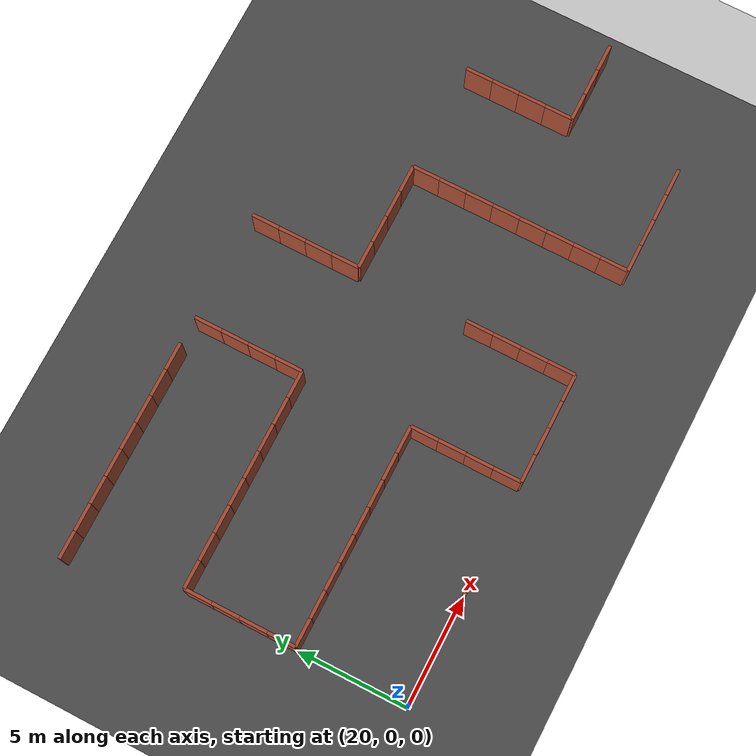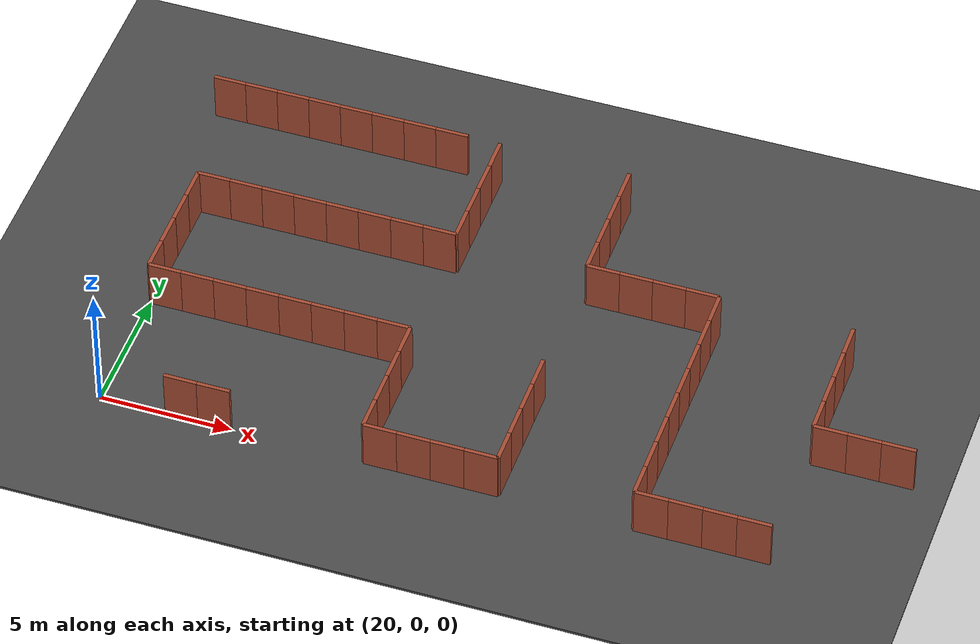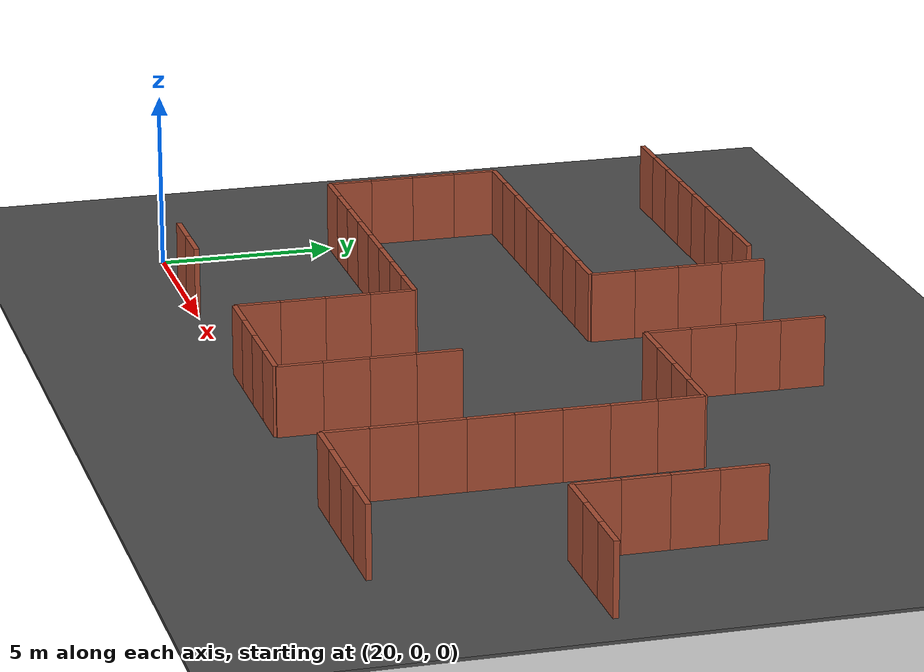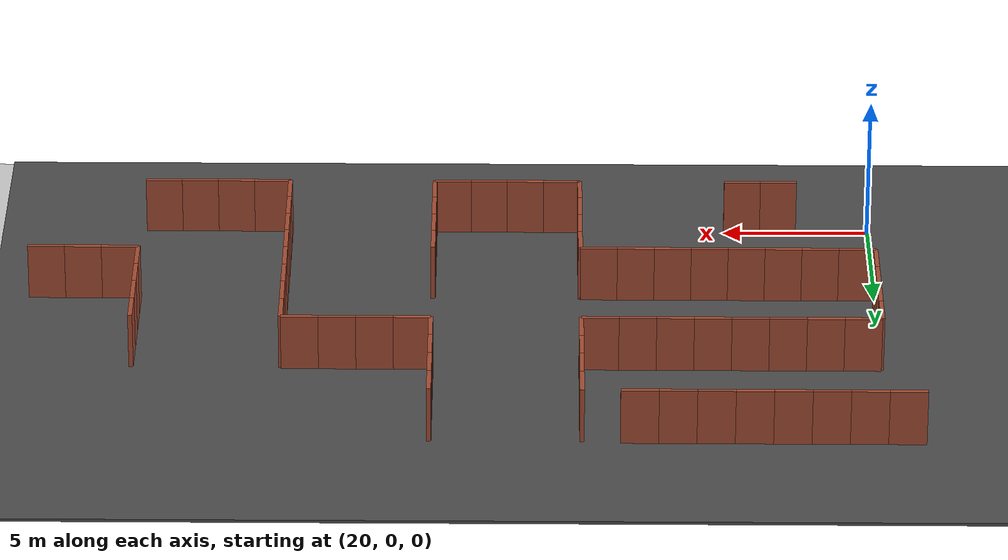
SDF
<sdf version="1.6">
 <world name="default">
  <model name="ground_plane">
   <static>1</static>
   <link name="link">
    <collision name="collision">
     <geometry><plane><normal>0 0 1</normal><size>100 100</size></plane></geometry>
     <surface><friction><ode><mu>100</mu><mu2>50</mu2></ode></friction></surface>
    </collision>
    <visual name="visual">
     <cast_shadows>0</cast_shadows>
     <geometry><plane><normal>0 0 1</normal><size>100 100</size></plane></geometry>
     <material>
      <script><uri>file://media/materials/scripts/gazebo.material</uri><name>Gazebo/Grey</name></script>
     </material>
    </visual>
   </link>
  </model>
  <model name="asphalt_plane">
   <static>1</static>
   <link name="link">
    <collision name="collision"><geometry><box><size>100 100 0.1</size></box></geometry></collision>
    <visual name="visual">
     <cast_shadows>0</cast_shadows>
     <geometry><box><size>100 100 0.1</size></box></geometry>
     <material>
      <script>
       <uri>model://asphalt_plane/materials/scripts</uri>
       <uri>model://asphalt_plane/materials/textures</uri>
       <name>vrc/asphalt</name>
      </script>
     </material>
    </visual>
   </link>
  </model>
  <model name="brick_wall_28_22_vertical1">
   <pose>20.625 5 0 0 -0 0</pose>
   <link name="Wall_0">
    <collision name="Wall_0_Collision">
     <geometry><box><size>1.25 0.15 2</size></box></geometry>
     <pose>0 0 1 0 -0 0</pose>
    </collision>
    <visual name="Wall_0_Visual">
     <pose>0 0 1 0 -0 0</pose>
     <geometry><box><size>1.25 0.15 2</size></box></geometry>
     <material>
      <script><uri>file://media/materials/scripts/gazebo.material</uri><name>Gazebo/Bricks</name></script>
      <ambient>1 1 1 1</ambient>
     </material>
     <meta><layer>0</layer></meta>
    </visual>
   </link>
   <static>1</static>
  </model>
  <model name="brick_wall_28_22_horizontal1">
   <pose>20 5.625 0 0 -0 1.5708</pose>
   <link name="Wall_0">
    <collision name="Wall_0_Collision">
     <geometry><box><size>1.25 0.15 2</size></box></geometry>
     <pose>0 0 1 0 -0 0</pose>
    </collision>
    <visual name="Wall_0_Visual">
     <pose>0 0 1 0 -0 0</pose>
     <geometry><box><size>1.25 0.15 2</size></box></geometry>
     <material>
      <script><uri>file://media/materials/scripts/gazebo.material</uri><name>Gazebo/Bricks</name></script>
      <ambient>1 1 1 1</ambient>
     </material>
     <meta><layer>0</layer></meta>
    </visual>
   </link>
   <static>1</static>
  </model>
  <model name="brick_wall_28_23_horizontal1">
   <pose>20 8.125 0 0 -0 1.5708</pose>
   <link name="Wall_0">
    <collision name="Wall_0_Collision">
     <geometry><box><size>1.25 0.15 2</size></box></geometry>
     <pose>0 0 1 0 -0 0</pose>
    </collision>
    <visual name="Wall_0_Visual">
     <pose>0 0 1 0 -0 0</pose>
     <geometry><box><size>1.25 0.15 2</size></box></geometry>
     <material>
      <script><uri>file://media/materials/scripts/gazebo.material</uri><name>Gazebo/Bricks</name></script>
      <ambient>1 1 1 1</ambient>
     </material>
     <meta><layer>0</layer></meta>
    </visual>
   </link>
   <static>1</static>
  </model>
  <model name="brick_wall_28_23_horizontal2">
   <pose>20 6.875 0 0 -0 1.5708</pose>
   <link name="Wall_0">
    <collision name="Wall_0_Collision">
     <geometry><box><size>1.25 0.15 2</size></box></geometry>
     <pose>0 0 1 0 -0 0</pose>
    </collision>
    <visual name="Wall_0_Visual">
     <pose>0 0 1 0 -0 0</pose>
     <geometry><box><size>1.25 0.15 2</size></box></geometry>
     <material>
      <script><uri>file://media/materials/scripts/gazebo.material</uri><name>Gazebo/Bricks</name></script>
      <ambient>1 1 1 1</ambient>
     </material>
     <meta><layer>0</layer></meta>
    </visual>
   </link>
   <static>1</static>
  </model>
  <model name="brick_wall_28_24_vertical1">
   <pose>20.625 10 0 0 -0 0</pose>
   <link name="Wall_0">
    <collision name="Wall_0_Collision">
     <geometry><box><size>1.25 0.15 2</size></box></geometry>
     <pose>0 0 1 0 -0 0</pose>
    </collision>
    <visual name="Wall_0_Visual">
     <pose>0 0 1 0 -0 0</pose>
     <geometry><box><size>1.25 0.15 2</size></box></geometry>
     <material>
      <script><uri>file://media/materials/scripts/gazebo.material</uri><name>Gazebo/Bricks</name></script>
      <ambient>1 1 1 1</ambient>
     </material>
     <meta><layer>0</layer></meta>
    </visual>
   </link>
   <static>1</static>
  </model>
  <model name="brick_wall_28_24_horizontal2">
   <pose>20 9.375 0 0 -0 1.5708</pose>
   <link name="Wall_0">
    <collision name="Wall_0_Collision">
     <geometry><box><size>1.25 0.15 2</size></box></geometry>
     <pose>0 0 1 0 -0 0</pose>
    </collision>
    <visual name="Wall_0_Visual">
     <pose>0 0 1 0 -0 0</pose>
     <geometry><box><size>1.25 0.15 2</size></box></geometry>
     <material>
      <script><uri>file://media/materials/scripts/gazebo.material</uri><name>Gazebo/Bricks</name></script>
      <ambient>1 1 1 1</ambient>
     </material>
     <meta><layer>0</layer></meta>
    </visual>
   </link>
   <static>1</static>
  </model>
  <model name="brick_wall_28_26_vertical1">
   <pose>20.625 15 0 0 -0 0</pose>
   <link name="Wall_0">
    <collision name="Wall_0_Collision">
     <geometry><box><size>1.25 0.15 2</size></box></geometry>
     <pose>0 0 1 0 -0 0</pose>
    </collision>
    <visual name="Wall_0_Visual">
     <pose>0 0 1 0 -0 0</pose>
     <geometry><box><size>1.25 0.15 2</size></box></geometry>
     <material>
      <script><uri>file://media/materials/scripts/gazebo.material</uri><name>Gazebo/Bricks</name></script>
      <ambient>1 1 1 1</ambient>
     </material>
     <meta><layer>0</layer></meta>
    </visual>
   </link>
   <static>1</static>
  </model>
  <model name="brick_wall_28_26_vertical2">
   <pose>19.375 15 0 0 -0 0</pose>
   <link name="Wall_0">
    <collision name="Wall_0_Collision">
     <geometry><box><size>1.25 0.15 2</size></box></geometry>
     <pose>0 0 1 0 -0 0</pose>
    </collision>
    <visual name="Wall_0_Visual">
     <pose>0 0 1 0 -0 0</pose>
     <geometry><box><size>1.25 0.15 2</size></box></geometry>
     <material>
      <script><uri>file://media/materials/scripts/gazebo.material</uri><name>Gazebo/Bricks</name></script>
      <ambient>1 1 1 1</ambient>
     </material>
     <meta><layer>0</layer></meta>
    </visual>
   </link>
   <static>1</static>
  </model>
  <model name="brick_wall_29_20_vertical1">
   <pose>23.125 0 0 0 -0 0</pose>
   <link name="Wall_0">
    <collision name="Wall_0_Collision">
     <geometry><box><size>1.25 0.15 2</size></box></geometry>
     <pose>0 0 1 0 -0 0</pose>
    </collision>
    <visual name="Wall_0_Visual">
     <pose>0 0 1 0 -0 0</pose>
     <geometry><box><size>1.25 0.15 2</size></box></geometry>
     <material>
      <script><uri>file://media/materials/scripts/gazebo.material</uri><name>Gazebo/Bricks</name></script>
      <ambient>1 1 1 1</ambient>
     </material>
     <meta><layer>0</layer></meta>
    </visual>
   </link>
   <static>1</static>
  </model>
  <model name="brick_wall_29_22_vertical1">
   <pose>23.125 5 0 0 -0 0</pose>
   <link name="Wall_0">
    <collision name="Wall_0_Collision">
     <geometry><box><size>1.25 0.15 2</size></box></geometry>
     <pose>0 0 1 0 -0 0</pose>
    </collision>
    <visual name="Wall_0_Visual">
     <pose>0 0 1 0 -0 0</pose>
     <geometry><box><size>1.25 0.15 2</size></box></geometry>
     <material>
      <script><uri>file://media/materials/scripts/gazebo.material</uri><name>Gazebo/Bricks</name></script>
      <ambient>1 1 1 1</ambient>
     </material>
     <meta><layer>0</layer></meta>
    </visual>
   </link>
   <static>1</static>
  </model>
  <model name="brick_wall_29_22_vertical2">
   <pose>21.875 5 0 0 -0 0</pose>
   <link name="Wall_0">
    <collision name="Wall_0_Collision">
     <geometry><box><size>1.25 0.15 2</size></box></geometry>
     <pose>0 0 1 0 -0 0</pose>
    </collision>
    <visual name="Wall_0_Visual">
     <pose>0 0 1 0 -0 0</pose>
     <geometry><box><size>1.25 0.15 2</size></box></geometry>
     <material>
      <script><uri>file://media/materials/scripts/gazebo.material</uri><name>Gazebo/Bricks</name></script>
      <ambient>1 1 1 1</ambient>
     </material>
     <meta><layer>0</layer></meta>
    </visual>
   </link>
   <static>1</static>
  </model>
  <model name="brick_wall_29_24_vertical1">
   <pose>23.125 10 0 0 -0 0</pose>
   <link name="Wall_0">
    <collision name="Wall_0_Collision">
     <geometry><box><size>1.25 0.15 2</size></box></geometry>
     <pose>0 0 1 0 -0 0</pose>
    </collision>
    <visual name="Wall_0_Visual">
     <pose>0 0 1 0 -0 0</pose>
     <geometry><box><size>1.25 0.15 2</size></box></geometry>
     <material>
      <script><uri>file://media/materials/scripts/gazebo.material</uri><name>Gazebo/Bricks</name></script>
      <ambient>1 1 1 1</ambient>
     </material>
     <meta><layer>0</layer></meta>
    </visual>
   </link>
   <static>1</static>
  </model>
  <model name="brick_wall_29_24_vertical2">
   <pose>21.875 10 0 0 -0 0</pose>
   <link name="Wall_0">
    <collision name="Wall_0_Collision">
     <geometry><box><size>1.25 0.15 2</size></box></geometry>
     <pose>0 0 1 0 -0 0</pose>
    </collision>
    <visual name="Wall_0_Visual">
     <pose>0 0 1 0 -0 0</pose>
     <geometry><box><size>1.25 0.15 2</size></box></geometry>
     <material>
      <script><uri>file://media/materials/scripts/gazebo.material</uri><name>Gazebo/Bricks</name></script>
      <ambient>1 1 1 1</ambient>
     </material>
     <meta><layer>0</layer></meta>
    </visual>
   </link>
   <static>1</static>
  </model>
  <model name="brick_wall_29_26_vertical1">
   <pose>23.125 15 0 0 -0 0</pose>
   <link name="Wall_0">
    <collision name="Wall_0_Collision">
     <geometry><box><size>1.25 0.15 2</size></box></geometry>
     <pose>0 0 1 0 -0 0</pose>
    </collision>
    <visual name="Wall_0_Visual">
     <pose>0 0 1 0 -0 0</pose>
     <geometry><box><size>1.25 0.15 2</size></box></geometry>
     <material>
      <script><uri>file://media/materials/scripts/gazebo.material</uri><name>Gazebo/Bricks</name></script>
      <ambient>1 1 1 1</ambient>
     </material>
     <meta><layer>0</layer></meta>
    </visual>
   </link>
   <static>1</static>
  </model>
  <model name="brick_wall_29_26_vertical2">
   <pose>21.875 15 0 0 -0 0</pose>
   <link name="Wall_0">
    <collision name="Wall_0_Collision">
     <geometry><box><size>1.25 0.15 2</size></box></geometry>
     <pose>0 0 1 0 -0 0</pose>
    </collision>
    <visual name="Wall_0_Visual">
     <pose>0 0 1 0 -0 0</pose>
     <geometry><box><size>1.25 0.15 2</size></box></geometry>
     <material>
      <script><uri>file://media/materials/scripts/gazebo.material</uri><name>Gazebo/Bricks</name></script>
      <ambient>1 1 1 1</ambient>
     </material>
     <meta><layer>0</layer></meta>
    </visual>
   </link>
   <static>1</static>
  </model>
  <model name="brick_wall_30_20_vertical2">
   <pose>24.375 0 0 0 -0 0</pose>
   <link name="Wall_0">
    <collision name="Wall_0_Collision">
     <geometry><box><size>1.25 0.15 2</size></box></geometry>
     <pose>0 0 1 0 -0 0</pose>
    </collision>
    <visual name="Wall_0_Visual">
     <pose>0 0 1 0 -0 0</pose>
     <geometry><box><size>1.25 0.15 2</size></box></geometry>
     <material>
      <script><uri>file://media/materials/scripts/gazebo.material</uri><name>Gazebo/Bricks</name></script>
      <ambient>1 1 1 1</ambient>
     </material>
     <meta><layer>0</layer></meta>
    </visual>
   </link>
   <static>1</static>
  </model>
  <model name="brick_wall_30_22_vertical1">
   <pose>25.625 5 0 0 -0 0</pose>
   <link name="Wall_0">
    <collision name="Wall_0_Collision">
     <geometry><box><size>1.25 0.15 2</size></box></geometry>
     <pose>0 0 1 0 -0 0</pose>
    </collision>
    <visual name="Wall_0_Visual">
     <pose>0 0 1 0 -0 0</pose>
     <geometry><box><size>1.25 0.15 2</size></box></geometry>
     <material>
      <script><uri>file://media/materials/scripts/gazebo.material</uri><name>Gazebo/Bricks</name></script>
      <ambient>1 1 1 1</ambient>
     </material>
     <meta><layer>0</layer></meta>
    </visual>
   </link>
   <static>1</static>
  </model>
  <model name="brick_wall_30_22_vertical2">
   <pose>24.375 5 0 0 -0 0</pose>
   <link name="Wall_0">
    <collision name="Wall_0_Collision">
     <geometry><box><size>1.25 0.15 2</size></box></geometry>
     <pose>0 0 1 0 -0 0</pose>
    </collision>
    <visual name="Wall_0_Visual">
     <pose>0 0 1 0 -0 0</pose>
     <geometry><box><size>1.25 0.15 2</size></box></geometry>
     <material>
      <script><uri>file://media/materials/scripts/gazebo.material</uri><name>Gazebo/Bricks</name></script>
      <ambient>1 1 1 1</ambient>
     </material>
     <meta><layer>0</layer></meta>
    </visual>
   </link>
   <static>1</static>
  </model>
  <model name="brick_wall_30_24_vertical1">
   <pose>25.625 10 0 0 -0 0</pose>
   <link name="Wall_0">
    <collision name="Wall_0_Collision">
     <geometry><box><size>1.25 0.15 2</size></box></geometry>
     <pose>0 0 1 0 -0 0</pose>
    </collision>
    <visual name="Wall_0_Visual">
     <pose>0 0 1 0 -0 0</pose>
     <geometry><box><size>1.25 0.15 2</size></box></geometry>
     <material>
      <script><uri>file://media/materials/scripts/gazebo.material</uri><name>Gazebo/Bricks</name></script>
      <ambient>1 1 1 1</ambient>
     </material>
     <meta><layer>0</layer></meta>
    </visual>
   </link>
   <static>1</static>
  </model>
  <model name="brick_wall_30_24_vertical2">
   <pose>24.375 10 0 0 -0 0</pose>
   <link name="Wall_0">
    <collision name="Wall_0_Collision">
     <geometry><box><size>1.25 0.15 2</size></box></geometry>
     <pose>0 0 1 0 -0 0</pose>
    </collision>
    <visual name="Wall_0_Visual">
     <pose>0 0 1 0 -0 0</pose>
     <geometry><box><size>1.25 0.15 2</size></box></geometry>
     <material>
      <script><uri>file://media/materials/scripts/gazebo.material</uri><name>Gazebo/Bricks</name></script>
      <ambient>1 1 1 1</ambient>
     </material>
     <meta><layer>0</layer></meta>
    </visual>
   </link>
   <static>1</static>
  </model>
  <model name="brick_wall_30_26_vertical1">
   <pose>25.625 15 0 0 -0 0</pose>
   <link name="Wall_0">
    <collision name="Wall_0_Collision">
     <geometry><box><size>1.25 0.15 2</size></box></geometry>
     <pose>0 0 1 0 -0 0</pose>
    </collision>
    <visual name="Wall_0_Visual">
     <pose>0 0 1 0 -0 0</pose>
     <geometry><box><size>1.25 0.15 2</size></box></geometry>
     <material>
      <script><uri>file://media/materials/scripts/gazebo.material</uri><name>Gazebo/Bricks</name></script>
      <ambient>1 1 1 1</ambient>
     </material>
     <meta><layer>0</layer></meta>
    </visual>
   </link>
   <static>1</static>
  </model>
  <model name="brick_wall_30_26_vertical2">
   <pose>24.375 15 0 0 -0 0</pose>
   <link name="Wall_0">
    <collision name="Wall_0_Collision">
     <geometry><box><size>1.25 0.15 2</size></box></geometry>
     <pose>0 0 1 0 -0 0</pose>
    </collision>
    <visual name="Wall_0_Visual">
     <pose>0 0 1 0 -0 0</pose>
     <geometry><box><size>1.25 0.15 2</size></box></geometry>
     <material>
      <script><uri>file://media/materials/scripts/gazebo.material</uri><name>Gazebo/Bricks</name></script>
      <ambient>1 1 1 1</ambient>
     </material>
     <meta><layer>0</layer></meta>
    </visual>
   </link>
   <static>1</static>
  </model>
  <model name="brick_wall_31_22_vertical1">
   <pose>28.125 5 0 0 -0 0</pose>
   <link name="Wall_0">
    <collision name="Wall_0_Collision">
     <geometry><box><size>1.25 0.15 2</size></box></geometry>
     <pose>0 0 1 0 -0 0</pose>
    </collision>
    <visual name="Wall_0_Visual">
     <pose>0 0 1 0 -0 0</pose>
     <geometry><box><size>1.25 0.15 2</size></box></geometry>
     <material>
      <script><uri>file://media/materials/scripts/gazebo.material</uri><name>Gazebo/Bricks</name></script>
      <ambient>1 1 1 1</ambient>
     </material>
     <meta><layer>0</layer></meta>
    </visual>
   </link>
   <static>1</static>
  </model>
  <model name="brick_wall_31_22_vertical2">
   <pose>26.875 5 0 0 -0 0</pose>
   <link name="Wall_0">
    <collision name="Wall_0_Collision">
     <geometry><box><size>1.25 0.15 2</size></box></geometry>
     <pose>0 0 1 0 -0 0</pose>
    </collision>
    <visual name="Wall_0_Visual">
     <pose>0 0 1 0 -0 0</pose>
     <geometry><box><size>1.25 0.15 2</size></box></geometry>
     <material>
      <script><uri>file://media/materials/scripts/gazebo.material</uri><name>Gazebo/Bricks</name></script>
      <ambient>1 1 1 1</ambient>
     </material>
     <meta><layer>0</layer></meta>
    </visual>
   </link>
   <static>1</static>
  </model>
  <model name="brick_wall_31_24_vertical1">
   <pose>28.125 10 0 0 -0 0</pose>
   <link name="Wall_0">
    <collision name="Wall_0_Collision">
     <geometry><box><size>1.25 0.15 2</size></box></geometry>
     <pose>0 0 1 0 -0 0</pose>
    </collision>
    <visual name="Wall_0_Visual">
     <pose>0 0 1 0 -0 0</pose>
     <geometry><box><size>1.25 0.15 2</size></box></geometry>
     <material>
      <script><uri>file://media/materials/scripts/gazebo.material</uri><name>Gazebo/Bricks</name></script>
      <ambient>1 1 1 1</ambient>
     </material>
     <meta><layer>0</layer></meta>
    </visual>
   </link>
   <static>1</static>
  </model>
  <model name="brick_wall_31_24_vertical2">
   <pose>26.875 10 0 0 -0 0</pose>
   <link name="Wall_0">
    <collision name="Wall_0_Collision">
     <geometry><box><size>1.25 0.15 2</size></box></geometry>
     <pose>0 0 1 0 -0 0</pose>
    </collision>
    <visual name="Wall_0_Visual">
     <pose>0 0 1 0 -0 0</pose>
     <geometry><box><size>1.25 0.15 2</size></box></geometry>
     <material>
      <script><uri>file://media/materials/scripts/gazebo.material</uri><name>Gazebo/Bricks</name></script>
      <ambient>1 1 1 1</ambient>
     </material>
     <meta><layer>0</layer></meta>
    </visual>
   </link>
   <static>1</static>
  </model>
  <model name="brick_wall_31_26_vertical1">
   <pose>28.125 15 0 0 -0 0</pose>
   <link name="Wall_0">
    <collision name="Wall_0_Collision">
     <geometry><box><size>1.25 0.15 2</size></box></geometry>
     <pose>0 0 1 0 -0 0</pose>
    </collision>
    <visual name="Wall_0_Visual">
     <pose>0 0 1 0 -0 0</pose>
     <geometry><box><size>1.25 0.15 2</size></box></geometry>
     <material>
      <script><uri>file://media/materials/scripts/gazebo.material</uri><name>Gazebo/Bricks</name></script>
      <ambient>1 1 1 1</ambient>
     </material>
     <meta><layer>0</layer></meta>
    </visual>
   </link>
   <static>1</static>
  </model>
  <model name="brick_wall_31_26_vertical2">
   <pose>26.875 15 0 0 -0 0</pose>
   <link name="Wall_0">
    <collision name="Wall_0_Collision">
     <geometry><box><size>1.25 0.15 2</size></box></geometry>
     <pose>0 0 1 0 -0 0</pose>
    </collision>
    <visual name="Wall_0_Visual">
     <pose>0 0 1 0 -0 0</pose>
     <geometry><box><size>1.25 0.15 2</size></box></geometry>
     <material>
      <script><uri>file://media/materials/scripts/gazebo.material</uri><name>Gazebo/Bricks</name></script>
      <ambient>1 1 1 1</ambient>
     </material>
     <meta><layer>0</layer></meta>
    </visual>
   </link>
   <static>1</static>
  </model>
  <model name="brick_wall_32_20_vertical1">
   <pose>30.625 0 0 0 -0 0</pose>
   <link name="Wall_0">
    <collision name="Wall_0_Collision">
     <geometry><box><size>1.25 0.15 2</size></box></geometry>
     <pose>0 0 1 0 -0 0</pose>
    </collision>
    <visual name="Wall_0_Visual">
     <pose>0 0 1 0 -0 0</pose>
     <geometry><box><size>1.25 0.15 2</size></box></geometry>
     <material>
      <script><uri>file://media/materials/scripts/gazebo.material</uri><name>Gazebo/Bricks</name></script>
      <ambient>1 1 1 1</ambient>
     </material>
     <meta><layer>0</layer></meta>
    </visual>
   </link>
   <static>1</static>
  </model>
  <model name="brick_wall_32_20_horizontal1">
   <pose>30 0.625 0 0 -0 1.5708</pose>
   <link name="Wall_0">
    <collision name="Wall_0_Collision">
     <geometry><box><size>1.25 0.15 2</size></box></geometry>
     <pose>0 0 1 0 -0 0</pose>
    </collision>
    <visual name="Wall_0_Visual">
     <pose>0 0 1 0 -0 0</pose>
     <geometry><box><size>1.25 0.15 2</size></box></geometry>
     <material>
      <script><uri>file://media/materials/scripts/gazebo.material</uri><name>Gazebo/Bricks</name></script>
      <ambient>1 1 1 1</ambient>
     </material>
     <meta><layer>0</layer></meta>
    </visual>
   </link>
   <static>1</static>
  </model>
  <model name="brick_wall_32_21_horizontal1">
   <pose>30 3.125 0 0 -0 1.5708</pose>
   <link name="Wall_0">
    <collision name="Wall_0_Collision">
     <geometry><box><size>1.25 0.15 2</size></box></geometry>
     <pose>0 0 1 0 -0 0</pose>
    </collision>
    <visual name="Wall_0_Visual">
     <pose>0 0 1 0 -0 0</pose>
     <geometry><box><size>1.25 0.15 2</size></box></geometry>
     <material>
      <script><uri>file://media/materials/scripts/gazebo.material</uri><name>Gazebo/Bricks</name></script>
      <ambient>1 1 1 1</ambient>
     </material>
     <meta><layer>0</layer></meta>
    </visual>
   </link>
   <static>1</static>
  </model>
  <model name="brick_wall_32_21_horizontal2">
   <pose>30 1.875 0 0 -0 1.5708</pose>
   <link name="Wall_0">
    <collision name="Wall_0_Collision">
     <geometry><box><size>1.25 0.15 2</size></box></geometry>
     <pose>0 0 1 0 -0 0</pose>
    </collision>
    <visual name="Wall_0_Visual">
     <pose>0 0 1 0 -0 0</pose>
     <geometry><box><size>1.25 0.15 2</size></box></geometry>
     <material>
      <script><uri>file://media/materials/scripts/gazebo.material</uri><name>Gazebo/Bricks</name></script>
      <ambient>1 1 1 1</ambient>
     </material>
     <meta><layer>0</layer></meta>
    </visual>
   </link>
   <static>1</static>
  </model>
  <model name="brick_wall_32_22_vertical2">
   <pose>29.375 5 0 0 -0 0</pose>
   <link name="Wall_0">
    <collision name="Wall_0_Collision">
     <geometry><box><size>1.25 0.15 2</size></box></geometry>
     <pose>0 0 1 0 -0 0</pose>
    </collision>
    <visual name="Wall_0_Visual">
     <pose>0 0 1 0 -0 0</pose>
     <geometry><box><size>1.25 0.15 2</size></box></geometry>
     <material>
      <script><uri>file://media/materials/scripts/gazebo.material</uri><name>Gazebo/Bricks</name></script>
      <ambient>1 1 1 1</ambient>
     </material>
     <meta><layer>0</layer></meta>
    </visual>
   </link>
   <static>1</static>
  </model>
  <model name="brick_wall_32_22_horizontal2">
   <pose>30 4.375 0 0 -0 1.5708</pose>
   <link name="Wall_0">
    <collision name="Wall_0_Collision">
     <geometry><box><size>1.25 0.15 2</size></box></geometry>
     <pose>0 0 1 0 -0 0</pose>
    </collision>
    <visual name="Wall_0_Visual">
     <pose>0 0 1 0 -0 0</pose>
     <geometry><box><size>1.25 0.15 2</size></box></geometry>
     <material>
      <script><uri>file://media/materials/scripts/gazebo.material</uri><name>Gazebo/Bricks</name></script>
      <ambient>1 1 1 1</ambient>
     </material>
     <meta><layer>0</layer></meta>
    </visual>
   </link>
   <static>1</static>
  </model>
  <model name="brick_wall_32_24_vertical2">
   <pose>29.375 10 0 0 -0 0</pose>
   <link name="Wall_0">
    <collision name="Wall_0_Collision">
     <geometry><box><size>1.25 0.15 2</size></box></geometry>
     <pose>0 0 1 0 -0 0</pose>
    </collision>
    <visual name="Wall_0_Visual">
     <pose>0 0 1 0 -0 0</pose>
     <geometry><box><size>1.25 0.15 2</size></box></geometry>
     <material>
      <script><uri>file://media/materials/scripts/gazebo.material</uri><name>Gazebo/Bricks</name></script>
      <ambient>1 1 1 1</ambient>
     </material>
     <meta><layer>0</layer></meta>
    </visual>
   </link>
   <static>1</static>
  </model>
  <model name="brick_wall_32_24_horizontal1">
   <pose>30 10.625 0 0 -0 1.5708</pose>
   <link name="Wall_0">
    <collision name="Wall_0_Collision">
     <geometry><box><size>1.25 0.15 2</size></box></geometry>
     <pose>0 0 1 0 -0 0</pose>
    </collision>
    <visual name="Wall_0_Visual">
     <pose>0 0 1 0 -0 0</pose>
     <geometry><box><size>1.25 0.15 2</size></box></geometry>
     <material>
      <script><uri>file://media/materials/scripts/gazebo.material</uri><name>Gazebo/Bricks</name></script>
      <ambient>1 1 1 1</ambient>
     </material>
     <meta><layer>0</layer></meta>
    </visual>
   </link>
   <static>1</static>
  </model>
  <model name="brick_wall_32_25_horizontal1">
   <pose>30 13.125 0 0 -0 1.5708</pose>
   <link name="Wall_0">
    <collision name="Wall_0_Collision">
     <geometry><box><size>1.25 0.15 2</size></box></geometry>
     <pose>0 0 1 0 -0 0</pose>
    </collision>
    <visual name="Wall_0_Visual">
     <pose>0 0 1 0 -0 0</pose>
     <geometry><box><size>1.25 0.15 2</size></box></geometry>
     <material>
      <script><uri>file://media/materials/scripts/gazebo.material</uri><name>Gazebo/Bricks</name></script>
      <ambient>1 1 1 1</ambient>
     </material>
     <meta><layer>0</layer></meta>
    </visual>
   </link>
   <static>1</static>
  </model>
  <model name="brick_wall_32_25_horizontal2">
   <pose>30 11.875 0 0 -0 1.5708</pose>
   <link name="Wall_0">
    <collision name="Wall_0_Collision">
     <geometry><box><size>1.25 0.15 2</size></box></geometry>
     <pose>0 0 1 0 -0 0</pose>
    </collision>
    <visual name="Wall_0_Visual">
     <pose>0 0 1 0 -0 0</pose>
     <geometry><box><size>1.25 0.15 2</size></box></geometry>
     <material>
      <script><uri>file://media/materials/scripts/gazebo.material</uri><name>Gazebo/Bricks</name></script>
      <ambient>1 1 1 1</ambient>
     </material>
     <meta><layer>0</layer></meta>
    </visual>
   </link>
   <static>1</static>
  </model>
  <model name="brick_wall_32_26_horizontal2">
   <pose>30 14.375 0 0 -0 1.5708</pose>
   <link name="Wall_0">
    <collision name="Wall_0_Collision">
     <geometry><box><size>1.25 0.15 2</size></box></geometry>
     <pose>0 0 1 0 -0 0</pose>
    </collision>
    <visual name="Wall_0_Visual">
     <pose>0 0 1 0 -0 0</pose>
     <geometry><box><size>1.25 0.15 2</size></box></geometry>
     <material>
      <script><uri>file://media/materials/scripts/gazebo.material</uri><name>Gazebo/Bricks</name></script>
      <ambient>1 1 1 1</ambient>
     </material>
     <meta><layer>0</layer></meta>
    </visual>
   </link>
   <static>1</static>
  </model>
  <model name="brick_wall_33_20_vertical1">
   <pose>33.125 0 0 0 -0 0</pose>
   <link name="Wall_0">
    <collision name="Wall_0_Collision">
     <geometry><box><size>1.25 0.15 2</size></box></geometry>
     <pose>0 0 1 0 -0 0</pose>
    </collision>
    <visual name="Wall_0_Visual">
     <pose>0 0 1 0 -0 0</pose>
     <geometry><box><size>1.25 0.15 2</size></box></geometry>
     <material>
      <script><uri>file://media/materials/scripts/gazebo.material</uri><name>Gazebo/Bricks</name></script>
      <ambient>1 1 1 1</ambient>
     </material>
     <meta><layer>0</layer></meta>
    </visual>
   </link>
   <static>1</static>
  </model>
  <model name="brick_wall_33_20_vertical2">
   <pose>31.875 0 0 0 -0 0</pose>
   <link name="Wall_0">
    <collision name="Wall_0_Collision">
     <geometry><box><size>1.25 0.15 2</size></box></geometry>
     <pose>0 0 1 0 -0 0</pose>
    </collision>
    <visual name="Wall_0_Visual">
     <pose>0 0 1 0 -0 0</pose>
     <geometry><box><size>1.25 0.15 2</size></box></geometry>
     <material>
      <script><uri>file://media/materials/scripts/gazebo.material</uri><name>Gazebo/Bricks</name></script>
      <ambient>1 1 1 1</ambient>
     </material>
     <meta><layer>0</layer></meta>
    </visual>
   </link>
   <static>1</static>
  </model>
  <model name="brick_wall_34_20_vertical2">
   <pose>34.375 0 0 0 -0 0</pose>
   <link name="Wall_0">
    <collision name="Wall_0_Collision">
     <geometry><box><size>1.25 0.15 2</size></box></geometry>
     <pose>0 0 1 0 -0 0</pose>
    </collision>
    <visual name="Wall_0_Visual">
     <pose>0 0 1 0 -0 0</pose>
     <geometry><box><size>1.25 0.15 2</size></box></geometry>
     <material>
      <script><uri>file://media/materials/scripts/gazebo.material</uri><name>Gazebo/Bricks</name></script>
      <ambient>1 1 1 1</ambient>
     </material>
     <meta><layer>0</layer></meta>
    </visual>
   </link>
   <static>1</static>
  </model>
  <model name="brick_wall_34_20_horizontal1">
   <pose>35 0.625 0 0 -0 1.5708</pose>
   <link name="Wall_0">
    <collision name="Wall_0_Collision">
     <geometry><box><size>1.25 0.15 2</size></box></geometry>
     <pose>0 0 1 0 -0 0</pose>
    </collision>
    <visual name="Wall_0_Visual">
     <pose>0 0 1 0 -0 0</pose>
     <geometry><box><size>1.25 0.15 2</size></box></geometry>
     <material>
      <script><uri>file://media/materials/scripts/gazebo.material</uri><name>Gazebo/Bricks</name></script>
      <ambient>1 1 1 1</ambient>
     </material>
     <meta><layer>0</layer></meta>
    </visual>
   </link>
   <static>1</static>
  </model>
  <model name="brick_wall_34_21_horizontal1">
   <pose>35 3.125 0 0 -0 1.5708</pose>
   <link name="Wall_0">
    <collision name="Wall_0_Collision">
     <geometry><box><size>1.25 0.15 2</size></box></geometry>
     <pose>0 0 1 0 -0 0</pose>
    </collision>
    <visual name="Wall_0_Visual">
     <pose>0 0 1 0 -0 0</pose>
     <geometry><box><size>1.25 0.15 2</size></box></geometry>
     <material>
      <script><uri>file://media/materials/scripts/gazebo.material</uri><name>Gazebo/Bricks</name></script>
      <ambient>1 1 1 1</ambient>
     </material>
     <meta><layer>0</layer></meta>
    </visual>
   </link>
   <static>1</static>
  </model>
  <model name="brick_wall_34_21_horizontal2">
   <pose>35 1.875 0 0 -0 1.5708</pose>
   <link name="Wall_0">
    <collision name="Wall_0_Collision">
     <geometry><box><size>1.25 0.15 2</size></box></geometry>
     <pose>0 0 1 0 -0 0</pose>
    </collision>
    <visual name="Wall_0_Visual">
     <pose>0 0 1 0 -0 0</pose>
     <geometry><box><size>1.25 0.15 2</size></box></geometry>
     <material>
      <script><uri>file://media/materials/scripts/gazebo.material</uri><name>Gazebo/Bricks</name></script>
      <ambient>1 1 1 1</ambient>
     </material>
     <meta><layer>0</layer></meta>
    </visual>
   </link>
   <static>1</static>
  </model>
  <model name="brick_wall_34_22_horizontal2">
   <pose>35 4.375 0 0 -0 1.5708</pose>
   <link name="Wall_0">
    <collision name="Wall_0_Collision">
     <geometry><box><size>1.25 0.15 2</size></box></geometry>
     <pose>0 0 1 0 -0 0</pose>
    </collision>
    <visual name="Wall_0_Visual">
     <pose>0 0 1 0 -0 0</pose>
     <geometry><box><size>1.25 0.15 2</size></box></geometry>
     <material>
      <script><uri>file://media/materials/scripts/gazebo.material</uri><name>Gazebo/Bricks</name></script>
      <ambient>1 1 1 1</ambient>
     </material>
     <meta><layer>0</layer></meta>
    </visual>
   </link>
   <static>1</static>
  </model>
  <model name="brick_wall_34_24_vertical1">
   <pose>35.625 10 0 0 -0 0</pose>
   <link name="Wall_0">
    <collision name="Wall_0_Collision">
     <geometry><box><size>1.25 0.15 2</size></box></geometry>
     <pose>0 0 1 0 -0 0</pose>
    </collision>
    <visual name="Wall_0_Visual">
     <pose>0 0 1 0 -0 0</pose>
     <geometry><box><size>1.25 0.15 2</size></box></geometry>
     <material>
      <script><uri>file://media/materials/scripts/gazebo.material</uri><name>Gazebo/Bricks</name></script>
      <ambient>1 1 1 1</ambient>
     </material>
     <meta><layer>0</layer></meta>
    </visual>
   </link>
   <static>1</static>
  </model>
  <model name="brick_wall_34_24_horizontal1">
   <pose>35 10.625 0 0 -0 1.5708</pose>
   <link name="Wall_0">
    <collision name="Wall_0_Collision">
     <geometry><box><size>1.25 0.15 2</size></box></geometry>
     <pose>0 0 1 0 -0 0</pose>
    </collision>
    <visual name="Wall_0_Visual">
     <pose>0 0 1 0 -0 0</pose>
     <geometry><box><size>1.25 0.15 2</size></box></geometry>
     <material>
      <script><uri>file://media/materials/scripts/gazebo.material</uri><name>Gazebo/Bricks</name></script>
      <ambient>1 1 1 1</ambient>
     </material>
     <meta><layer>0</layer></meta>
    </visual>
   </link>
   <static>1</static>
  </model>
  <model name="brick_wall_34_25_horizontal1">
   <pose>35 13.125 0 0 -0 1.5708</pose>
   <link name="Wall_0">
    <collision name="Wall_0_Collision">
     <geometry><box><size>1.25 0.15 2</size></box></geometry>
     <pose>0 0 1 0 -0 0</pose>
    </collision>
    <visual name="Wall_0_Visual">
     <pose>0 0 1 0 -0 0</pose>
     <geometry><box><size>1.25 0.15 2</size></box></geometry>
     <material>
      <script><uri>file://media/materials/scripts/gazebo.material</uri><name>Gazebo/Bricks</name></script>
      <ambient>1 1 1 1</ambient>
     </material>
     <meta><layer>0</layer></meta>
    </visual>
   </link>
   <static>1</static>
  </model>
  <model name="brick_wall_34_25_horizontal2">
   <pose>35 11.875 0 0 -0 1.5708</pose>
   <link name="Wall_0">
    <collision name="Wall_0_Collision">
     <geometry><box><size>1.25 0.15 2</size></box></geometry>
     <pose>0 0 1 0 -0 0</pose>
    </collision>
    <visual name="Wall_0_Visual">
     <pose>0 0 1 0 -0 0</pose>
     <geometry><box><size>1.25 0.15 2</size></box></geometry>
     <material>
      <script><uri>file://media/materials/scripts/gazebo.material</uri><name>Gazebo/Bricks</name></script>
      <ambient>1 1 1 1</ambient>
     </material>
     <meta><layer>0</layer></meta>
    </visual>
   </link>
   <static>1</static>
  </model>
  <model name="brick_wall_34_26_horizontal2">
   <pose>35 14.375 0 0 -0 1.5708</pose>
   <link name="Wall_0">
    <collision name="Wall_0_Collision">
     <geometry><box><size>1.25 0.15 2</size></box></geometry>
     <pose>0 0 1 0 -0 0</pose>
    </collision>
    <visual name="Wall_0_Visual">
     <pose>0 0 1 0 -0 0</pose>
     <geometry><box><size>1.25 0.15 2</size></box></geometry>
     <material>
      <script><uri>file://media/materials/scripts/gazebo.material</uri><name>Gazebo/Bricks</name></script>
      <ambient>1 1 1 1</ambient>
     </material>
     <meta><layer>0</layer></meta>
    </visual>
   </link>
   <static>1</static>
  </model>
  <model name="brick_wall_35_24_vertical1">
   <pose>38.125 10 0 0 -0 0</pose>
   <link name="Wall_0">
    <collision name="Wall_0_Collision">
     <geometry><box><size>1.25 0.15 2</size></box></geometry>
     <pose>0 0 1 0 -0 0</pose>
    </collision>
    <visual name="Wall_0_Visual">
     <pose>0 0 1 0 -0 0</pose>
     <geometry><box><size>1.25 0.15 2</size></box></geometry>
     <material>
      <script><uri>file://media/materials/scripts/gazebo.material</uri><name>Gazebo/Bricks</name></script>
      <ambient>1 1 1 1</ambient>
     </material>
     <meta><layer>0</layer></meta>
    </visual>
   </link>
   <static>1</static>
  </model>
  <model name="brick_wall_35_24_vertical2">
   <pose>36.875 10 0 0 -0 0</pose>
   <link name="Wall_0">
    <collision name="Wall_0_Collision">
     <geometry><box><size>1.25 0.15 2</size></box></geometry>
     <pose>0 0 1 0 -0 0</pose>
    </collision>
    <visual name="Wall_0_Visual">
     <pose>0 0 1 0 -0 0</pose>
     <geometry><box><size>1.25 0.15 2</size></box></geometry>
     <material>
      <script><uri>file://media/materials/scripts/gazebo.material</uri><name>Gazebo/Bricks</name></script>
      <ambient>1 1 1 1</ambient>
     </material>
     <meta><layer>0</layer></meta>
    </visual>
   </link>
   <static>1</static>
  </model>
  <model name="brick_wall_36_20_vertical1">
   <pose>40.625 0 0 0 -0 0</pose>
   <link name="Wall_0">
    <collision name="Wall_0_Collision">
     <geometry><box><size>1.25 0.15 2</size></box></geometry>
     <pose>0 0 1 0 -0 0</pose>
    </collision>
    <visual name="Wall_0_Visual">
     <pose>0 0 1 0 -0 0</pose>
     <geometry><box><size>1.25 0.15 2</size></box></geometry>
     <material>
      <script><uri>file://media/materials/scripts/gazebo.material</uri><name>Gazebo/Bricks</name></script>
      <ambient>1 1 1 1</ambient>
     </material>
     <meta><layer>0</layer></meta>
    </visual>
   </link>
   <static>1</static>
  </model>
  <model name="brick_wall_36_20_horizontal1">
   <pose>40 0.625 0 0 -0 1.5708</pose>
   <link name="Wall_0">
    <collision name="Wall_0_Collision">
     <geometry><box><size>1.25 0.15 2</size></box></geometry>
     <pose>0 0 1 0 -0 0</pose>
    </collision>
    <visual name="Wall_0_Visual">
     <pose>0 0 1 0 -0 0</pose>
     <geometry><box><size>1.25 0.15 2</size></box></geometry>
     <material>
      <script><uri>file://media/materials/scripts/gazebo.material</uri><name>Gazebo/Bricks</name></script>
      <ambient>1 1 1 1</ambient>
     </material>
     <meta><layer>0</layer></meta>
    </visual>
   </link>
   <static>1</static>
  </model>
  <model name="brick_wall_36_21_horizontal1">
   <pose>40 3.125 0 0 -0 1.5708</pose>
   <link name="Wall_0">
    <collision name="Wall_0_Collision">
     <geometry><box><size>1.25 0.15 2</size></box></geometry>
     <pose>0 0 1 0 -0 0</pose>
    </collision>
    <visual name="Wall_0_Visual">
     <pose>0 0 1 0 -0 0</pose>
     <geometry><box><size>1.25 0.15 2</size></box></geometry>
     <material>
      <script><uri>file://media/materials/scripts/gazebo.material</uri><name>Gazebo/Bricks</name></script>
      <ambient>1 1 1 1</ambient>
     </material>
     <meta><layer>0</layer></meta>
    </visual>
   </link>
   <static>1</static>
  </model>
  <model name="brick_wall_36_21_horizontal2">
   <pose>40 1.875 0 0 -0 1.5708</pose>
   <link name="Wall_0">
    <collision name="Wall_0_Collision">
     <geometry><box><size>1.25 0.15 2</size></box></geometry>
     <pose>0 0 1 0 -0 0</pose>
    </collision>
    <visual name="Wall_0_Visual">
     <pose>0 0 1 0 -0 0</pose>
     <geometry><box><size>1.25 0.15 2</size></box></geometry>
     <material>
      <script><uri>file://media/materials/scripts/gazebo.material</uri><name>Gazebo/Bricks</name></script>
      <ambient>1 1 1 1</ambient>
     </material>
     <meta><layer>0</layer></meta>
    </visual>
   </link>
   <static>1</static>
  </model>
  <model name="brick_wall_36_22_horizontal1">
   <pose>40 5.625 0 0 -0 1.5708</pose>
   <link name="Wall_0">
    <collision name="Wall_0_Collision">
     <geometry><box><size>1.25 0.15 2</size></box></geometry>
     <pose>0 0 1 0 -0 0</pose>
    </collision>
    <visual name="Wall_0_Visual">
     <pose>0 0 1 0 -0 0</pose>
     <geometry><box><size>1.25 0.15 2</size></box></geometry>
     <material>
      <script><uri>file://media/materials/scripts/gazebo.material</uri><name>Gazebo/Bricks</name></script>
      <ambient>1 1 1 1</ambient>
     </material>
     <meta><layer>0</layer></meta>
    </visual>
   </link>
   <static>1</static>
  </model>
  <model name="brick_wall_36_22_horizontal2">
   <pose>40 4.375 0 0 -0 1.5708</pose>
   <link name="Wall_0">
    <collision name="Wall_0_Collision">
     <geometry><box><size>1.25 0.15 2</size></box></geometry>
     <pose>0 0 1 0 -0 0</pose>
    </collision>
    <visual name="Wall_0_Visual">
     <pose>0 0 1 0 -0 0</pose>
     <geometry><box><size>1.25 0.15 2</size></box></geometry>
     <material>
      <script><uri>file://media/materials/scripts/gazebo.material</uri><name>Gazebo/Bricks</name></script>
      <ambient>1 1 1 1</ambient>
     </material>
     <meta><layer>0</layer></meta>
    </visual>
   </link>
   <static>1</static>
  </model>
  <model name="brick_wall_36_23_horizontal1">
   <pose>40 8.125 0 0 -0 1.5708</pose>
   <link name="Wall_0">
    <collision name="Wall_0_Collision">
     <geometry><box><size>1.25 0.15 2</size></box></geometry>
     <pose>0 0 1 0 -0 0</pose>
    </collision>
    <visual name="Wall_0_Visual">
     <pose>0 0 1 0 -0 0</pose>
     <geometry><box><size>1.25 0.15 2</size></box></geometry>
     <material>
      <script><uri>file://media/materials/scripts/gazebo.material</uri><name>Gazebo/Bricks</name></script>
      <ambient>1 1 1 1</ambient>
     </material>
     <meta><layer>0</layer></meta>
    </visual>
   </link>
   <static>1</static>
  </model>
  <model name="brick_wall_36_23_horizontal2">
   <pose>40 6.875 0 0 -0 1.5708</pose>
   <link name="Wall_0">
    <collision name="Wall_0_Collision">
     <geometry><box><size>1.25 0.15 2</size></box></geometry>
     <pose>0 0 1 0 -0 0</pose>
    </collision>
    <visual name="Wall_0_Visual">
     <pose>0 0 1 0 -0 0</pose>
     <geometry><box><size>1.25 0.15 2</size></box></geometry>
     <material>
      <script><uri>file://media/materials/scripts/gazebo.material</uri><name>Gazebo/Bricks</name></script>
      <ambient>1 1 1 1</ambient>
     </material>
     <meta><layer>0</layer></meta>
    </visual>
   </link>
   <static>1</static>
  </model>
  <model name="brick_wall_36_24_vertical2">
   <pose>39.375 10 0 0 -0 0</pose>
   <link name="Wall_0">
    <collision name="Wall_0_Collision">
     <geometry><box><size>1.25 0.15 2</size></box></geometry>
     <pose>0 0 1 0 -0 0</pose>
    </collision>
    <visual name="Wall_0_Visual">
     <pose>0 0 1 0 -0 0</pose>
     <geometry><box><size>1.25 0.15 2</size></box></geometry>
     <material>
      <script><uri>file://media/materials/scripts/gazebo.material</uri><name>Gazebo/Bricks</name></script>
      <ambient>1 1 1 1</ambient>
     </material>
     <meta><layer>0</layer></meta>
    </visual>
   </link>
   <static>1</static>
  </model>
  <model name="brick_wall_36_24_horizontal2">
   <pose>40 9.375 0 0 -0 1.5708</pose>
   <link name="Wall_0">
    <collision name="Wall_0_Collision">
     <geometry><box><size>1.25 0.15 2</size></box></geometry>
     <pose>0 0 1 0 -0 0</pose>
    </collision>
    <visual name="Wall_0_Visual">
     <pose>0 0 1 0 -0 0</pose>
     <geometry><box><size>1.25 0.15 2</size></box></geometry>
     <material>
      <script><uri>file://media/materials/scripts/gazebo.material</uri><name>Gazebo/Bricks</name></script>
      <ambient>1 1 1 1</ambient>
     </material>
     <meta><layer>0</layer></meta>
    </visual>
   </link>
   <static>1</static>
  </model>
  <model name="brick_wall_37_20_vertical1">
   <pose>43.125 0 0 0 -0 0</pose>
   <link name="Wall_0">
    <collision name="Wall_0_Collision">
     <geometry><box><size>1.25 0.15 2</size></box></geometry>
     <pose>0 0 1 0 -0 0</pose>
    </collision>
    <visual name="Wall_0_Visual">
     <pose>0 0 1 0 -0 0</pose>
     <geometry><box><size>1.25 0.15 2</size></box></geometry>
     <material>
      <script><uri>file://media/materials/scripts/gazebo.material</uri><name>Gazebo/Bricks</name></script>
      <ambient>1 1 1 1</ambient>
     </material>
     <meta><layer>0</layer></meta>
    </visual>
   </link>
   <static>1</static>
  </model>
  <model name="brick_wall_37_20_vertical2">
   <pose>41.875 0 0 0 -0 0</pose>
   <link name="Wall_0">
    <collision name="Wall_0_Collision">
     <geometry><box><size>1.25 0.15 2</size></box></geometry>
     <pose>0 0 1 0 -0 0</pose>
    </collision>
    <visual name="Wall_0_Visual">
     <pose>0 0 1 0 -0 0</pose>
     <geometry><box><size>1.25 0.15 2</size></box></geometry>
     <material>
      <script><uri>file://media/materials/scripts/gazebo.material</uri><name>Gazebo/Bricks</name></script>
      <ambient>1 1 1 1</ambient>
     </material>
     <meta><layer>0</layer></meta>
    </visual>
   </link>
   <static>1</static>
  </model>
  <model name="brick_wall_38_20_vertical2">
   <pose>44.375 0 0 0 -0 0</pose>
   <link name="Wall_0">
    <collision name="Wall_0_Collision">
     <geometry><box><size>1.25 0.15 2</size></box></geometry>
     <pose>0 0 1 0 -0 0</pose>
    </collision>
    <visual name="Wall_0_Visual">
     <pose>0 0 1 0 -0 0</pose>
     <geometry><box><size>1.25 0.15 2</size></box></geometry>
     <material>
      <script><uri>file://media/materials/scripts/gazebo.material</uri><name>Gazebo/Bricks</name></script>
      <ambient>1 1 1 1</ambient>
     </material>
     <meta><layer>0</layer></meta>
    </visual>
   </link>
   <static>1</static>
  </model>
  <model name="brick_wall_38_22_vertical1">
   <pose>45.625 5 0 0 -0 0</pose>
   <link name="Wall_0">
    <collision name="Wall_0_Collision">
     <geometry><box><size>1.25 0.15 2</size></box></geometry>
     <pose>0 0 1 0 -0 0</pose>
    </collision>
    <visual name="Wall_0_Visual">
     <pose>0 0 1 0 -0 0</pose>
     <geometry><box><size>1.25 0.15 2</size></box></geometry>
     <material>
      <script><uri>file://media/materials/scripts/gazebo.material</uri><name>Gazebo/Bricks</name></script>
      <ambient>1 1 1 1</ambient>
     </material>
     <meta><layer>0</layer></meta>
    </visual>
   </link>
   <static>1</static>
  </model>
  <model name="brick_wall_38_22_horizontal1">
   <pose>45 5.625 0 0 -0 1.5708</pose>
   <link name="Wall_0">
    <collision name="Wall_0_Collision">
     <geometry><box><size>1.25 0.15 2</size></box></geometry>
     <pose>0 0 1 0 -0 0</pose>
    </collision>
    <visual name="Wall_0_Visual">
     <pose>0 0 1 0 -0 0</pose>
     <geometry><box><size>1.25 0.15 2</size></box></geometry>
     <material>
      <script><uri>file://media/materials/scripts/gazebo.material</uri><name>Gazebo/Bricks</name></script>
      <ambient>1 1 1 1</ambient>
     </material>
     <meta><layer>0</layer></meta>
    </visual>
   </link>
   <static>1</static>
  </model>
  <model name="brick_wall_38_23_horizontal1">
   <pose>45 8.125 0 0 -0 1.5708</pose>
   <link name="Wall_0">
    <collision name="Wall_0_Collision">
     <geometry><box><size>1.25 0.15 2</size></box></geometry>
     <pose>0 0 1 0 -0 0</pose>
    </collision>
    <visual name="Wall_0_Visual">
     <pose>0 0 1 0 -0 0</pose>
     <geometry><box><size>1.25 0.15 2</size></box></geometry>
     <material>
      <script><uri>file://media/materials/scripts/gazebo.material</uri><name>Gazebo/Bricks</name></script>
      <ambient>1 1 1 1</ambient>
     </material>
     <meta><layer>0</layer></meta>
    </visual>
   </link>
   <static>1</static>
  </model>
  <model name="brick_wall_38_23_horizontal2">
   <pose>45 6.875 0 0 -0 1.5708</pose>
   <link name="Wall_0">
    <collision name="Wall_0_Collision">
     <geometry><box><size>1.25 0.15 2</size></box></geometry>
     <pose>0 0 1 0 -0 0</pose>
    </collision>
    <visual name="Wall_0_Visual">
     <pose>0 0 1 0 -0 0</pose>
     <geometry><box><size>1.25 0.15 2</size></box></geometry>
     <material>
      <script><uri>file://media/materials/scripts/gazebo.material</uri><name>Gazebo/Bricks</name></script>
      <ambient>1 1 1 1</ambient>
     </material>
     <meta><layer>0</layer></meta>
    </visual>
   </link>
   <static>1</static>
  </model>
  <model name="brick_wall_38_24_horizontal2">
   <pose>45 9.375 0 0 -0 1.5708</pose>
   <link name="Wall_0">
    <collision name="Wall_0_Collision">
     <geometry><box><size>1.25 0.15 2</size></box></geometry>
     <pose>0 0 1 0 -0 0</pose>
    </collision>
    <visual name="Wall_0_Visual">
     <pose>0 0 1 0 -0 0</pose>
     <geometry><box><size>1.25 0.15 2</size></box></geometry>
     <material>
      <script><uri>file://media/materials/scripts/gazebo.material</uri><name>Gazebo/Bricks</name></script>
      <ambient>1 1 1 1</ambient>
     </material>
     <meta><layer>0</layer></meta>
    </visual>
   </link>
   <static>1</static>
  </model>
  <model name="brick_wall_39_22_vertical1">
   <pose>48.125 5 0 0 -0 0</pose>
   <link name="Wall_0">
    <collision name="Wall_0_Collision">
     <geometry><box><size>1.25 0.15 2</size></box></geometry>
     <pose>0 0 1 0 -0 0</pose>
    </collision>
    <visual name="Wall_0_Visual">
     <pose>0 0 1 0 -0 0</pose>
     <geometry><box><size>1.25 0.15 2</size></box></geometry>
     <material>
      <script><uri>file://media/materials/scripts/gazebo.material</uri><name>Gazebo/Bricks</name></script>
      <ambient>1 1 1 1</ambient>
     </material>
     <meta><layer>0</layer></meta>
    </visual>
   </link>
   <static>1</static>
  </model>
  <model name="brick_wall_39_22_vertical2">
   <pose>46.875 5 0 0 -0 0</pose>
   <link name="Wall_0">
    <collision name="Wall_0_Collision">
     <geometry><box><size>1.25 0.15 2</size></box></geometry>
     <pose>0 0 1 0 -0 0</pose>
    </collision>
    <visual name="Wall_0_Visual">
     <pose>0 0 1 0 -0 0</pose>
     <geometry><box><size>1.25 0.15 2</size></box></geometry>
     <material>
      <script><uri>file://media/materials/scripts/gazebo.material</uri><name>Gazebo/Bricks</name></script>
      <ambient>1 1 1 1</ambient>
     </material>
     <meta><layer>0</layer></meta>
    </visual>
   </link>
   <static>1</static>
  </model>
 </world>
</sdf>
